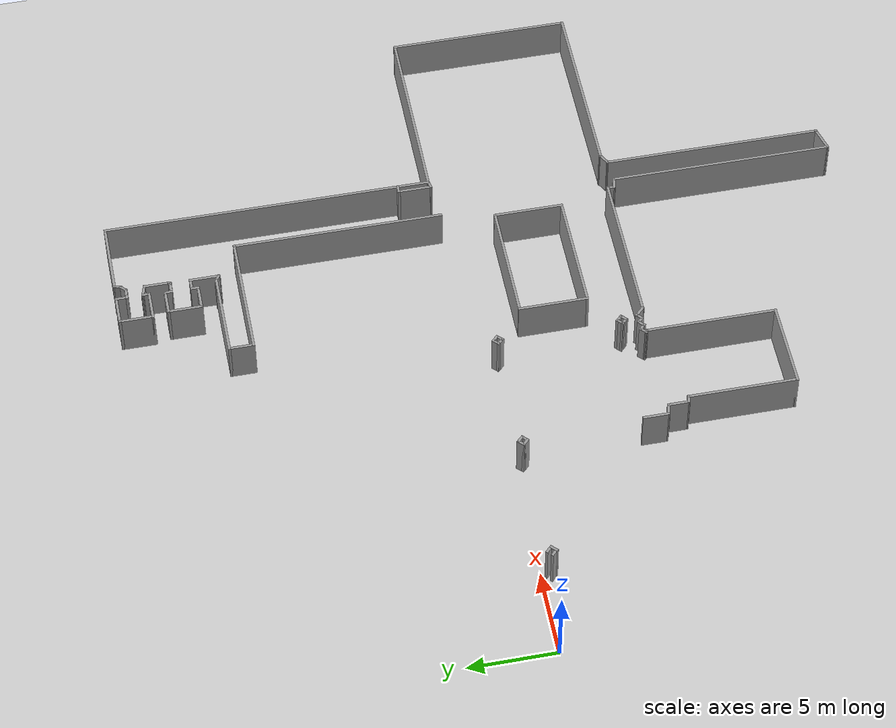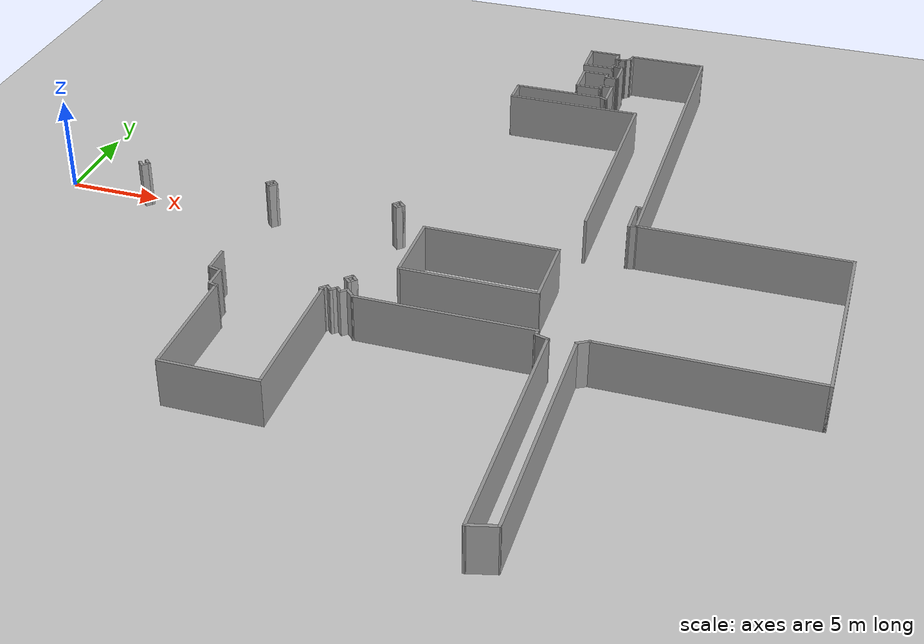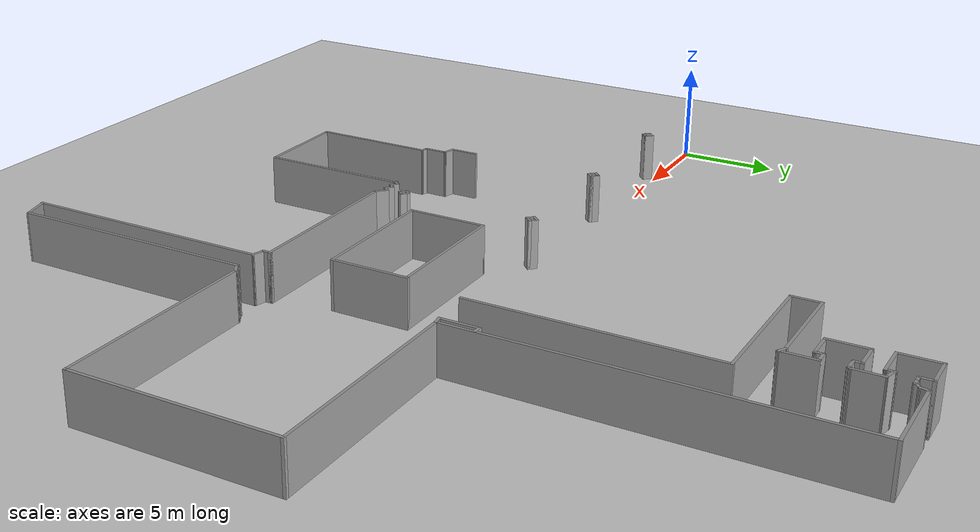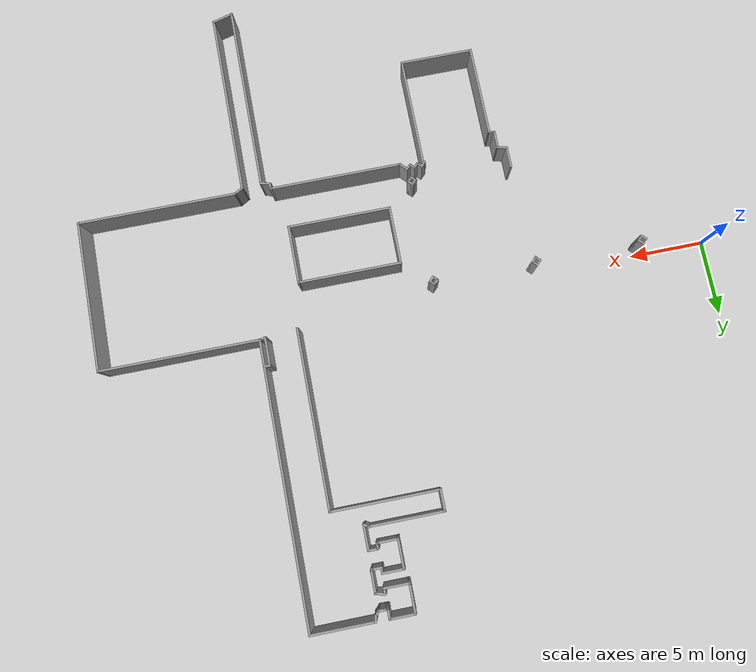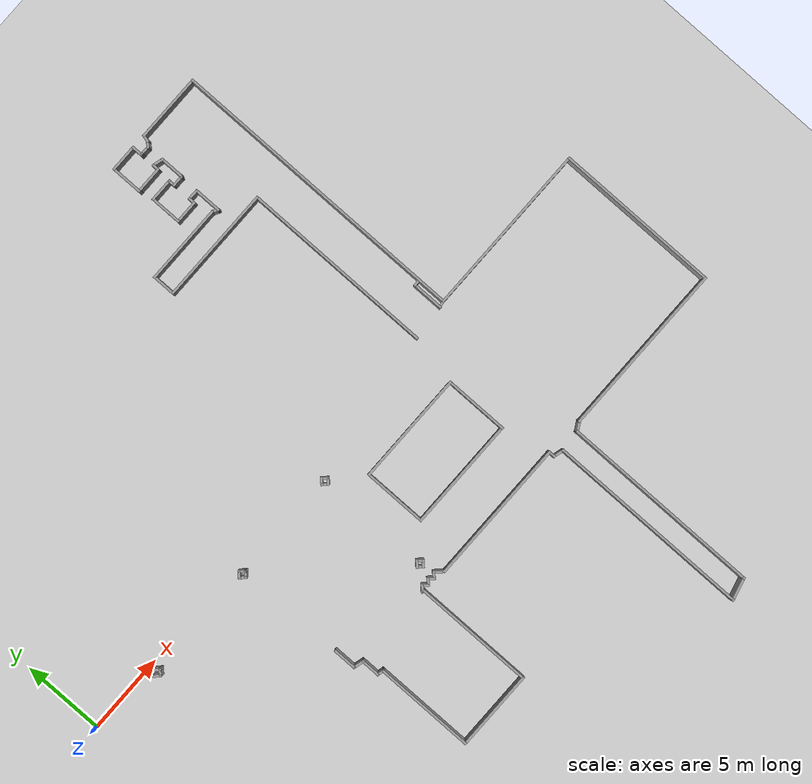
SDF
<sdf version="1.6">
 <world name="default">
  <model name="ground_plane">
   <static>1</static>
   <link name="link">
    <collision name="collision">
     <geometry><plane><normal>0 0 1</normal><size>100 100</size></plane></geometry>
     <surface><friction><ode><mu>100</mu><mu2>50</mu2></ode></friction></surface>
    </collision>
    <visual name="visual">
     <cast_shadows>0</cast_shadows>
     <geometry><plane><normal>0 0 1</normal><size>100 100</size></plane></geometry>
     <material>
      <script><uri>file://media/materials/scripts/gazebo.material</uri><name>Gazebo/Grey</name></script>
     </material>
    </visual>
   </link>
  </model>
  <model name="301_1f_2">
   <pose>0.932725 -1.08367 0 0 -0 0</pose>
   <link name="Wall_125">
    <collision name="Wall_125_Collision">
     <geometry><box><size>0.5 0.15 2.5</size></box></geometry>
     <pose>0 0 1.25 0 -0 0</pose>
    </collision>
    <visual name="Wall_125_Visual">
     <pose>0 0 1.25 0 -0 0</pose>
     <geometry><box><size>0.5 0.15 2.5</size></box></geometry>
     <material>
      <script><uri>file://media/materials/scripts/gazebo.material</uri><name>Gazebo/Grey</name></script>
      <ambient>1 1 1 1</ambient>
     </material>
     <meta><layer>0</layer></meta>
    </visual>
    <pose>29.67 4.02635 0 0 -0 3.14159</pose>
   </link>
   <link name="Wall_126">
    <collision name="Wall_126_Collision">
     <geometry><box><size>2 0.15 2.5</size></box></geometry>
     <pose>0 0 1.25 0 -0 0</pose>
    </collision>
    <visual name="Wall_126_Visual">
     <pose>0 0 1.25 0 -0 0</pose>
     <geometry><box><size>2 0.15 2.5</size></box></geometry>
     <material>
      <script><uri>file://media/materials/scripts/gazebo.material</uri><name>Gazebo/Grey</name></script>
      <ambient>1 1 1 1</ambient>
     </material>
     <meta><layer>0</layer></meta>
    </visual>
    <pose>29.495 3.10135 0 0 -0 -1.5708</pose>
   </link>
   <link name="Wall_127">
    <collision name="Wall_127_Collision">
     <geometry><box><size>0.518548 0.15 2.5</size></box></geometry>
     <pose>0 0 1.25 0 -0 0</pose>
    </collision>
    <visual name="Wall_127_Visual">
     <pose>0 0 1.25 0 -0 0</pose>
     <geometry><box><size>0.518548 0.15 2.5</size></box></geometry>
     <material>
      <script><uri>file://media/materials/scripts/gazebo.material</uri><name>Gazebo/Grey</name></script>
      <ambient>1 1 1 1</ambient>
     </material>
     <meta><layer>0</layer></meta>
    </visual>
    <pose>29.6756 2.21303 0 0 -0 0.200373</pose>
   </link>
   <link name="Wall_129">
    <collision name="Wall_129_Collision">
     <geometry><box><size>7 0.15 2.5</size></box></geometry>
     <pose>0 0 1.25 0 -0 0</pose>
    </collision>
    <visual name="Wall_129_Visual">
     <pose>0 0 1.25 0 -0 0</pose>
     <geometry><box><size>7 0.15 2.5</size></box></geometry>
     <material>
      <script><uri>file://media/materials/scripts/gazebo.material</uri><name>Gazebo/Grey</name></script>
      <ambient>1 1 1 1</ambient>
     </material>
     <meta><layer>0</layer></meta>
    </visual>
    <pose>23.2968 -1.0262 0 0 -0 0</pose>
   </link>
   <link name="Wall_130">
    <collision name="Wall_130_Collision">
     <geometry><box><size>4 0.15 2.5</size></box></geometry>
     <pose>0 0 1.25 0 -0 0</pose>
    </collision>
    <visual name="Wall_130_Visual">
     <pose>0 0 1.25 0 -0 0</pose>
     <geometry><box><size>4 0.15 2.5</size></box></geometry>
     <material>
      <script><uri>file://media/materials/scripts/gazebo.material</uri><name>Gazebo/Grey</name></script>
      <ambient>1 1 1 1</ambient>
     </material>
     <meta><layer>0</layer></meta>
    </visual>
    <pose>26.7218 -2.9512 0 0 -0 -1.5708</pose>
   </link>
   <link name="Wall_131">
    <collision name="Wall_131_Collision">
     <geometry><box><size>7 0.15 2.5</size></box></geometry>
     <pose>0 0 1.25 0 -0 0</pose>
    </collision>
    <visual name="Wall_131_Visual">
     <pose>0 0 1.25 0 -0 0</pose>
     <geometry><box><size>7 0.15 2.5</size></box></geometry>
     <material>
      <script><uri>file://media/materials/scripts/gazebo.material</uri><name>Gazebo/Grey</name></script>
      <ambient>1 1 1 1</ambient>
     </material>
     <meta><layer>0</layer></meta>
    </visual>
    <pose>23.2968 -4.8762 0 0 -0 3.14159</pose>
   </link>
   <link name="Wall_132">
    <collision name="Wall_132_Collision">
     <geometry><box><size>4 0.15 2.5</size></box></geometry>
     <pose>0 0 1.25 0 -0 0</pose>
    </collision>
    <visual name="Wall_132_Visual">
     <pose>0 0 1.25 0 -0 0</pose>
     <geometry><box><size>4 0.15 2.5</size></box></geometry>
     <material>
      <script><uri>file://media/materials/scripts/gazebo.material</uri><name>Gazebo/Grey</name></script>
      <ambient>1 1 1 1</ambient>
     </material>
     <meta><layer>0</layer></meta>
    </visual>
    <pose>19.8718 -2.9512 0 0 -0 1.5708</pose>
   </link>
   <link name="Wall_134">
    <collision name="Wall_134_Collision">
     <geometry><box><size>0.5 0.15 2.5</size></box></geometry>
     <pose>0 0 1.25 0 -0 0</pose>
    </collision>
    <visual name="Wall_134_Visual">
     <pose>0 0 1.25 0 -0 0</pose>
     <geometry><box><size>0.5 0.15 2.5</size></box></geometry>
     <material>
      <script><uri>file://media/materials/scripts/gazebo.material</uri><name>Gazebo/Grey</name></script>
      <ambient>1 1 1 1</ambient>
     </material>
     <meta><layer>0</layer></meta>
    </visual>
    <pose>17.9015 -6.31132 0 0 -0 0.785398</pose>
   </link>
   <link name="Wall_135">
    <collision name="Wall_135_Collision">
     <geometry><box><size>0.5 0.15 2.5</size></box></geometry>
     <pose>0 0 1.25 0 -0 0</pose>
    </collision>
    <visual name="Wall_135_Visual">
     <pose>0 0 1.25 0 -0 0</pose>
     <geometry><box><size>0.5 0.15 2.5</size></box></geometry>
     <material>
      <script><uri>file://media/materials/scripts/gazebo.material</uri><name>Gazebo/Grey</name></script>
      <ambient>1 1 1 1</ambient>
     </material>
     <meta><layer>0</layer></meta>
    </visual>
    <pose>18.1489 -6.31132 0 0 -0 -0.785398</pose>
   </link>
   <link name="Wall_136">
    <collision name="Wall_136_Collision">
     <geometry><box><size>0.5 0.15 2.5</size></box></geometry>
     <pose>0 0 1.25 0 -0 0</pose>
    </collision>
    <visual name="Wall_136_Visual">
     <pose>0 0 1.25 0 -0 0</pose>
     <geometry><box><size>0.5 0.15 2.5</size></box></geometry>
     <material>
      <script><uri>file://media/materials/scripts/gazebo.material</uri><name>Gazebo/Grey</name></script>
      <ambient>1 1 1 1</ambient>
     </material>
     <meta><layer>0</layer></meta>
    </visual>
    <pose>18.1489 -6.55881 0 0 -0 -2.35619</pose>
   </link>
   <link name="Wall_137">
    <collision name="Wall_137_Collision">
     <geometry><box><size>0.5 0.15 2.5</size></box></geometry>
     <pose>0 0 1.25 0 -0 0</pose>
    </collision>
    <visual name="Wall_137_Visual">
     <pose>0 0 1.25 0 -0 0</pose>
     <geometry><box><size>0.5 0.15 2.5</size></box></geometry>
     <material>
      <script><uri>file://media/materials/scripts/gazebo.material</uri><name>Gazebo/Grey</name></script>
      <ambient>1 1 1 1</ambient>
     </material>
     <meta><layer>0</layer></meta>
    </visual>
    <pose>17.9015 -6.55881 0 0 -0 2.35619</pose>
   </link>
   <link name="Wall_139">
    <collision name="Wall_139_Collision">
     <geometry><box><size>0.5 0.15 2.5</size></box></geometry>
     <pose>0 0 1.25 0 -0 0</pose>
    </collision>
    <visual name="Wall_139_Visual">
     <pose>0 0 1.25 0 -0 0</pose>
     <geometry><box><size>0.5 0.15 2.5</size></box></geometry>
     <material>
      <script><uri>file://media/materials/scripts/gazebo.material</uri><name>Gazebo/Grey</name></script>
      <ambient>1 1 1 1</ambient>
     </material>
     <meta><layer>0</layer></meta>
    </visual>
    <pose>17.8424 0.709798 0 0 -0 0.785398</pose>
   </link>
   <link name="Wall_140">
    <collision name="Wall_140_Collision">
     <geometry><box><size>0.5 0.15 2.5</size></box></geometry>
     <pose>0 0 1.25 0 -0 0</pose>
    </collision>
    <visual name="Wall_140_Visual">
     <pose>0 0 1.25 0 -0 0</pose>
     <geometry><box><size>0.5 0.15 2.5</size></box></geometry>
     <material>
      <script><uri>file://media/materials/scripts/gazebo.material</uri><name>Gazebo/Grey</name></script>
      <ambient>1 1 1 1</ambient>
     </material>
     <meta><layer>0</layer></meta>
    </visual>
    <pose>18.0899 0.709798 0 0 -0 -0.785398</pose>
   </link>
   <link name="Wall_141">
    <collision name="Wall_141_Collision">
     <geometry><box><size>0.5 0.15 2.5</size></box></geometry>
     <pose>0 0 1.25 0 -0 0</pose>
    </collision>
    <visual name="Wall_141_Visual">
     <pose>0 0 1.25 0 -0 0</pose>
     <geometry><box><size>0.5 0.15 2.5</size></box></geometry>
     <material>
      <script><uri>file://media/materials/scripts/gazebo.material</uri><name>Gazebo/Grey</name></script>
      <ambient>1 1 1 1</ambient>
     </material>
     <meta><layer>0</layer></meta>
    </visual>
    <pose>18.0899 0.462311 0 0 -0 -2.35619</pose>
   </link>
   <link name="Wall_142">
    <collision name="Wall_142_Collision">
     <geometry><box><size>0.5 0.15 2.5</size></box></geometry>
     <pose>0 0 1.25 0 -0 0</pose>
    </collision>
    <visual name="Wall_142_Visual">
     <pose>0 0 1.25 0 -0 0</pose>
     <geometry><box><size>0.5 0.15 2.5</size></box></geometry>
     <material>
      <script><uri>file://media/materials/scripts/gazebo.material</uri><name>Gazebo/Grey</name></script>
      <ambient>1 1 1 1</ambient>
     </material>
     <meta><layer>0</layer></meta>
    </visual>
    <pose>17.8424 0.462311 0 0 -0 2.35619</pose>
   </link>
   <link name="Wall_144">
    <collision name="Wall_144_Collision">
     <geometry><box><size>0.5 0.15 2.5</size></box></geometry>
     <pose>0 0 1.25 0 -0 0</pose>
    </collision>
    <visual name="Wall_144_Visual">
     <pose>0 0 1.25 0 -0 0</pose>
     <geometry><box><size>0.5 0.15 2.5</size></box></geometry>
     <material>
      <script><uri>file://media/materials/scripts/gazebo.material</uri><name>Gazebo/Grey</name></script>
      <ambient>1 1 1 1</ambient>
     </material>
     <meta><layer>0</layer></meta>
    </visual>
    <pose>10.9112 0.724545 0 0 -0 0.785398</pose>
   </link>
   <link name="Wall_145">
    <collision name="Wall_145_Collision">
     <geometry><box><size>0.5 0.15 2.5</size></box></geometry>
     <pose>0 0 1.25 0 -0 0</pose>
    </collision>
    <visual name="Wall_145_Visual">
     <pose>0 0 1.25 0 -0 0</pose>
     <geometry><box><size>0.5 0.15 2.5</size></box></geometry>
     <material>
      <script><uri>file://media/materials/scripts/gazebo.material</uri><name>Gazebo/Grey</name></script>
      <ambient>1 1 1 1</ambient>
     </material>
     <meta><layer>0</layer></meta>
    </visual>
    <pose>11.1587 0.724545 0 0 -0 -0.785398</pose>
   </link>
   <link name="Wall_146">
    <collision name="Wall_146_Collision">
     <geometry><box><size>0.5 0.15 2.5</size></box></geometry>
     <pose>0 0 1.25 0 -0 0</pose>
    </collision>
    <visual name="Wall_146_Visual">
     <pose>0 0 1.25 0 -0 0</pose>
     <geometry><box><size>0.5 0.15 2.5</size></box></geometry>
     <material>
      <script><uri>file://media/materials/scripts/gazebo.material</uri><name>Gazebo/Grey</name></script>
      <ambient>1 1 1 1</ambient>
     </material>
     <meta><layer>0</layer></meta>
    </visual>
    <pose>11.1587 0.477058 0 0 -0 -2.35619</pose>
   </link>
   <link name="Wall_147">
    <collision name="Wall_147_Collision">
     <geometry><box><size>0.5 0.15 2.5</size></box></geometry>
     <pose>0 0 1.25 0 -0 0</pose>
    </collision>
    <visual name="Wall_147_Visual">
     <pose>0 0 1.25 0 -0 0</pose>
     <geometry><box><size>0.5 0.15 2.5</size></box></geometry>
     <material>
      <script><uri>file://media/materials/scripts/gazebo.material</uri><name>Gazebo/Grey</name></script>
      <ambient>1 1 1 1</ambient>
     </material>
     <meta><layer>0</layer></meta>
    </visual>
    <pose>10.9112 0.477058 0 0 -0 2.35619</pose>
   </link>
   <link name="Wall_150">
    <collision name="Wall_150_Collision">
     <geometry><box><size>0.5 0.15 2.5</size></box></geometry>
     <pose>0 0 1.25 0 -0 0</pose>
    </collision>
    <visual name="Wall_150_Visual">
     <pose>0 0 1.25 0 -0 0</pose>
     <geometry><box><size>0.5 0.15 2.5</size></box></geometry>
     <material>
      <script><uri>file://media/materials/scripts/gazebo.material</uri><name>Gazebo/Grey</name></script>
      <ambient>1 1 1 1</ambient>
     </material>
     <meta><layer>0</layer></meta>
    </visual>
    <pose>3.91743 0.666783 0 0 -0 -0.785398</pose>
   </link>
   <link name="Wall_153">
    <collision name="Wall_153_Collision">
     <geometry><box><size>0.5 0.15 2.5</size></box></geometry>
     <pose>0 0 1.25 0 -0 0</pose>
    </collision>
    <visual name="Wall_153_Visual">
     <pose>0 0 1.25 0 -0 0</pose>
     <geometry><box><size>0.5 0.15 2.5</size></box></geometry>
     <material>
      <script><uri>file://media/materials/scripts/gazebo.material</uri><name>Gazebo/Grey</name></script>
      <ambient>1 1 1 1</ambient>
     </material>
     <meta><layer>0</layer></meta>
    </visual>
    <pose>3.91743 0.419295 0 0 -0 -2.35619</pose>
   </link>
   <link name="Wall_154">
    <collision name="Wall_154_Collision">
     <geometry><box><size>0.5 0.15 2.5</size></box></geometry>
     <pose>0 0 1.25 0 -0 0</pose>
    </collision>
    <visual name="Wall_154_Visual">
     <pose>0 0 1.25 0 -0 0</pose>
     <geometry><box><size>0.5 0.15 2.5</size></box></geometry>
     <material>
      <script><uri>file://media/materials/scripts/gazebo.material</uri><name>Gazebo/Grey</name></script>
      <ambient>1 1 1 1</ambient>
     </material>
     <meta><layer>0</layer></meta>
    </visual>
    <pose>3.66994 0.419295 0 0 -0 2.35619</pose>
   </link>
   <link name="Wall_31">
    <collision name="Wall_31_Collision">
     <geometry><box><size>1.5 0.15 2.5</size></box></geometry>
     <pose>0 0 1.25 0 -0 0</pose>
    </collision>
    <visual name="Wall_31_Visual">
     <pose>0 0 1.25 0 -0 0</pose>
     <geometry><box><size>1.5 0.15 2.5</size></box></geometry>
     <material>
      <script><uri>file://media/materials/scripts/gazebo.material</uri><name>Gazebo/Grey</name></script>
      <ambient>1 1 1 1</ambient>
     </material>
     <meta><layer>0</layer></meta>
    </visual>
    <pose>11.2703 -6.82264 0 0 -0 -1.5708</pose>
   </link>
   <link name="Wall_32">
    <collision name="Wall_32_Collision">
     <geometry><box><size>0.75 0.15 2.5</size></box></geometry>
     <pose>0 0 1.25 0 -0 0</pose>
    </collision>
    <visual name="Wall_32_Visual">
     <pose>0 0 1.25 0 -0 0</pose>
     <geometry><box><size>0.75 0.15 2.5</size></box></geometry>
     <material>
      <script><uri>file://media/materials/scripts/gazebo.material</uri><name>Gazebo/Grey</name></script>
      <ambient>1 1 1 1</ambient>
     </material>
     <meta><layer>0</layer></meta>
    </visual>
    <pose>11.5601 -7.57528 0 0 -0 -0.261799</pose>
   </link>
   <link name="Wall_33">
    <collision name="Wall_33_Collision">
     <geometry><box><size>1.25 0.15 2.5</size></box></geometry>
     <pose>0 0 1.25 0 -0 0</pose>
    </collision>
    <visual name="Wall_33_Visual">
     <pose>0 0 1.25 0 -0 0</pose>
     <geometry><box><size>1.25 0.15 2.5</size></box></geometry>
     <material>
      <script><uri>file://media/materials/scripts/gazebo.material</uri><name>Gazebo/Grey</name></script>
      <ambient>1 1 1 1</ambient>
     </material>
     <meta><layer>0</layer></meta>
    </visual>
    <pose>11.8498 -8.20293 0 0 -0 -1.5708</pose>
   </link>
   <link name="Wall_34">
    <collision name="Wall_34_Collision">
     <geometry><box><size>0.5 0.15 2.5</size></box></geometry>
     <pose>0 0 1.25 0 -0 0</pose>
    </collision>
    <visual name="Wall_34_Visual">
     <pose>0 0 1.25 0 -0 0</pose>
     <geometry><box><size>0.5 0.15 2.5</size></box></geometry>
     <material>
      <script><uri>file://media/materials/scripts/gazebo.material</uri><name>Gazebo/Grey</name></script>
      <ambient>1 1 1 1</ambient>
     </material>
     <meta><layer>0</layer></meta>
    </visual>
    <pose>12.0189 -8.79822 0 0 -0 -0.261799</pose>
   </link>
   <link name="Wall_35">
    <collision name="Wall_35_Collision">
     <geometry><box><size>6.25 0.15 2.5</size></box></geometry>
     <pose>0 0 1.25 0 -0 0</pose>
    </collision>
    <visual name="Wall_35_Visual">
     <pose>0 0 1.25 0 -0 0</pose>
     <geometry><box><size>6.25 0.15 2.5</size></box></geometry>
     <material>
      <script><uri>file://media/materials/scripts/gazebo.material</uri><name>Gazebo/Grey</name></script>
      <ambient>1 1 1 1</ambient>
     </material>
     <meta><layer>0</layer></meta>
    </visual>
    <pose>12.1879 -11.8935 0 0 -0 -1.5708</pose>
   </link>
   <link name="Wall_36">
    <collision name="Wall_36_Collision">
     <geometry><box><size>5 0.15 2.5</size></box></geometry>
     <pose>0 0 1.25 0 -0 0</pose>
    </collision>
    <visual name="Wall_36_Visual">
     <pose>0 0 1.25 0 -0 0</pose>
     <geometry><box><size>5 0.15 2.5</size></box></geometry>
     <material>
      <script><uri>file://media/materials/scripts/gazebo.material</uri><name>Gazebo/Grey</name></script>
      <ambient>1 1 1 1</ambient>
     </material>
     <meta><layer>0</layer></meta>
    </visual>
    <pose>14.6129 -14.9435 0 0 -0 0</pose>
   </link>
   <link name="Wall_37">
    <collision name="Wall_37_Collision">
     <geometry><box><size>7.5 0.15 2.5</size></box></geometry>
     <pose>0 0 1.25 0 -0 0</pose>
    </collision>
    <visual name="Wall_37_Visual">
     <pose>0 0 1.25 0 -0 0</pose>
     <geometry><box><size>7.5 0.15 2.5</size></box></geometry>
     <material>
      <script><uri>file://media/materials/scripts/gazebo.material</uri><name>Gazebo/Grey</name></script>
      <ambient>1 1 1 1</ambient>
     </material>
     <meta><layer>0</layer></meta>
    </visual>
    <pose>17.0379 -11.2685 0 0 -0 1.5708</pose>
   </link>
   <link name="Wall_39">
    <collision name="Wall_39_Collision">
     <geometry><box><size>0.25 0.15 2.5</size></box></geometry>
     <pose>0 0 1.25 0 -0 0</pose>
    </collision>
    <visual name="Wall_39_Visual">
     <pose>0 0 1.25 0 -0 0</pose>
     <geometry><box><size>0.25 0.15 2.5</size></box></geometry>
     <material>
      <script><uri>file://media/materials/scripts/gazebo.material</uri><name>Gazebo/Grey</name></script>
      <ambient>1 1 1 1</ambient>
     </material>
     <meta><layer>0</layer></meta>
    </visual>
    <pose>16.9896 -7.58057 0 0 -0 2.87979</pose>
   </link>
   <link name="Wall_40">
    <collision name="Wall_40_Collision">
     <geometry><box><size>0.5 0.15 2.5</size></box></geometry>
     <pose>0 0 1.25 0 -0 0</pose>
    </collision>
    <visual name="Wall_40_Visual">
     <pose>0 0 1.25 0 -0 0</pose>
     <geometry><box><size>0.5 0.15 2.5</size></box></geometry>
     <material>
      <script><uri>file://media/materials/scripts/gazebo.material</uri><name>Gazebo/Grey</name></script>
      <ambient>1 1 1 1</ambient>
     </material>
     <meta><layer>0</layer></meta>
    </visual>
    <pose>17.0651 -7.44389 0 0 -0 0.785398</pose>
   </link>
   <link name="Wall_41">
    <collision name="Wall_41_Collision">
     <geometry><box><size>0.5 0.15 2.5</size></box></geometry>
     <pose>0 0 1.25 0 -0 0</pose>
    </collision>
    <visual name="Wall_41_Visual">
     <pose>0 0 1.25 0 -0 0</pose>
     <geometry><box><size>0.5 0.15 2.5</size></box></geometry>
     <material>
      <script><uri>file://media/materials/scripts/gazebo.material</uri><name>Gazebo/Grey</name></script>
      <ambient>1 1 1 1</ambient>
     </material>
     <meta><layer>0</layer></meta>
    </visual>
    <pose>17.3126 -7.44389 0 0 -0 -0.785398</pose>
   </link>
   <link name="Wall_42">
    <collision name="Wall_42_Collision">
     <geometry><box><size>0.5 0.15 2.5</size></box></geometry>
     <pose>0 0 1.25 0 -0 0</pose>
    </collision>
    <visual name="Wall_42_Visual">
     <pose>0 0 1.25 0 -0 0</pose>
     <geometry><box><size>0.5 0.15 2.5</size></box></geometry>
     <material>
      <script><uri>file://media/materials/scripts/gazebo.material</uri><name>Gazebo/Grey</name></script>
      <ambient>1 1 1 1</ambient>
     </material>
     <meta><layer>0</layer></meta>
    </visual>
    <pose>17.56 -7.44389 0 0 -0 0.785398</pose>
   </link>
   <link name="Wall_43">
    <collision name="Wall_43_Collision">
     <geometry><box><size>0.5 0.15 2.5</size></box></geometry>
     <pose>0 0 1.25 0 -0 0</pose>
    </collision>
    <visual name="Wall_43_Visual">
     <pose>0 0 1.25 0 -0 0</pose>
     <geometry><box><size>0.5 0.15 2.5</size></box></geometry>
     <material>
      <script><uri>file://media/materials/scripts/gazebo.material</uri><name>Gazebo/Grey</name></script>
      <ambient>1 1 1 1</ambient>
     </material>
     <meta><layer>0</layer></meta>
    </visual>
    <pose>17.8075 -7.44389 0 0 -0 -0.785398</pose>
   </link>
   <link name="Wall_44">
    <collision name="Wall_44_Collision">
     <geometry><box><size>0.5 0.15 2.5</size></box></geometry>
     <pose>0 0 1.25 0 -0 0</pose>
    </collision>
    <visual name="Wall_44_Visual">
     <pose>0 0 1.25 0 -0 0</pose>
     <geometry><box><size>0.5 0.15 2.5</size></box></geometry>
     <material>
      <script><uri>file://media/materials/scripts/gazebo.material</uri><name>Gazebo/Grey</name></script>
      <ambient>1 1 1 1</ambient>
     </material>
     <meta><layer>0</layer></meta>
    </visual>
    <pose>18.055 -7.44389 0 0 -0 0.785398</pose>
   </link>
   <link name="Wall_45">
    <collision name="Wall_45_Collision">
     <geometry><box><size>0.75 0.15 2.5</size></box></geometry>
     <pose>0 0 1.25 0 -0 0</pose>
    </collision>
    <visual name="Wall_45_Visual">
     <pose>0 0 1.25 0 -0 0</pose>
     <geometry><box><size>0.75 0.15 2.5</size></box></geometry>
     <material>
      <script><uri>file://media/materials/scripts/gazebo.material</uri><name>Gazebo/Grey</name></script>
      <ambient>1 1 1 1</ambient>
     </material>
     <meta><layer>0</layer></meta>
    </visual>
    <pose>18.3909 -7.53228 0 0 -0 -0.785398</pose>
   </link>
   <link name="Wall_46">
    <collision name="Wall_46_Collision">
     <geometry><box><size>9 0.15 2.5</size></box></geometry>
     <pose>0 0 1.25 0 -0 0</pose>
    </collision>
    <visual name="Wall_46_Visual">
     <pose>0 0 1.25 0 -0 0</pose>
     <geometry><box><size>9 0.15 2.5</size></box></geometry>
     <material>
      <script><uri>file://media/materials/scripts/gazebo.material</uri><name>Gazebo/Grey</name></script>
      <ambient>1 1 1 1</ambient>
     </material>
     <meta><layer>0</layer></meta>
    </visual>
    <pose>23.028 -7.74441 0 0 -0 0</pose>
   </link>
   <link name="Wall_47">
    <collision name="Wall_47_Collision">
     <geometry><box><size>0.5 0.15 2.5</size></box></geometry>
     <pose>0 0 1.25 0 -0 0</pose>
    </collision>
    <visual name="Wall_47_Visual">
     <pose>0 0 1.25 0 -0 0</pose>
     <geometry><box><size>0.5 0.15 2.5</size></box></geometry>
     <material>
      <script><uri>file://media/materials/scripts/gazebo.material</uri><name>Gazebo/Grey</name></script>
      <ambient>1 1 1 1</ambient>
     </material>
     <meta><layer>0</layer></meta>
    </visual>
    <pose>27.453 -7.91941 0 0 -0 -1.5708</pose>
   </link>
   <link name="Wall_48">
    <collision name="Wall_48_Collision">
     <geometry><box><size>0.75 0.15 2.5</size></box></geometry>
     <pose>0 0 1.25 0 -0 0</pose>
    </collision>
    <visual name="Wall_48_Visual">
     <pose>0 0 1.25 0 -0 0</pose>
     <geometry><box><size>0.75 0.15 2.5</size></box></geometry>
     <material>
      <script><uri>file://media/materials/scripts/gazebo.material</uri><name>Gazebo/Grey</name></script>
      <ambient>1 1 1 1</ambient>
     </material>
     <meta><layer>0</layer></meta>
    </visual>
    <pose>27.7428 -8.17206 0 0 -0 -0.261799</pose>
   </link>
   <link name="Wall_51">
    <collision name="Wall_51_Collision">
     <geometry><box><size>12.75 0.15 2.5</size></box></geometry>
     <pose>0 0 1.25 0 -0 0</pose>
    </collision>
    <visual name="Wall_51_Visual">
     <pose>0 0 1.25 0 -0 0</pose>
     <geometry><box><size>12.75 0.15 2.5</size></box></geometry>
     <material>
      <script><uri>file://media/materials/scripts/gazebo.material</uri><name>Gazebo/Grey</name></script>
      <ambient>1 1 1 1</ambient>
     </material>
     <meta><layer>0</layer></meta>
    </visual>
    <pose>28.0326 -14.5497 0 0 -0 -1.5708</pose>
   </link>
   <link name="Wall_52">
    <collision name="Wall_52_Collision">
     <geometry><box><size>1.5 0.15 2.5</size></box></geometry>
     <pose>0 0 1.25 0 -0 0</pose>
    </collision>
    <visual name="Wall_52_Visual">
     <pose>0 0 1.25 0 -0 0</pose>
     <geometry><box><size>1.5 0.15 2.5</size></box></geometry>
     <material>
      <script><uri>file://media/materials/scripts/gazebo.material</uri><name>Gazebo/Grey</name></script>
      <ambient>1 1 1 1</ambient>
     </material>
     <meta><layer>0</layer></meta>
    </visual>
    <pose>28.6846 -20.675 0 0 -0 0.261799</pose>
   </link>
   <link name="Wall_53">
    <collision name="Wall_53_Collision">
     <geometry><box><size>12.5 0.15 2.5</size></box></geometry>
     <pose>0 0 1.25 0 -0 0</pose>
    </collision>
    <visual name="Wall_53_Visual">
     <pose>0 0 1.25 0 -0 0</pose>
     <geometry><box><size>12.5 0.15 2.5</size></box></geometry>
     <material>
      <script><uri>file://media/materials/scripts/gazebo.material</uri><name>Gazebo/Grey</name></script>
      <ambient>1 1 1 1</ambient>
     </material>
     <meta><layer>0</layer></meta>
    </visual>
    <pose>29.3366 -14.3253 0 0 -0 1.5708</pose>
   </link>
   <link name="Wall_54">
    <collision name="Wall_54_Collision">
     <geometry><box><size>0.75 0.15 2.5</size></box></geometry>
     <pose>0 0 1.25 0 -0 0</pose>
    </collision>
    <visual name="Wall_54_Visual">
     <pose>0 0 1.25 0 -0 0</pose>
     <geometry><box><size>0.75 0.15 2.5</size></box></geometry>
     <material>
      <script><uri>file://media/materials/scripts/gazebo.material</uri><name>Gazebo/Grey</name></script>
      <ambient>1 1 1 1</ambient>
     </material>
     <meta><layer>0</layer></meta>
    </visual>
    <pose>29.5964 -8.0003 0 0 -0 0.523599</pose>
   </link>
   <link name="Wall_55">
    <collision name="Wall_55_Collision">
     <geometry><box><size>10.75 0.15 2.5</size></box></geometry>
     <pose>0 0 1.25 0 -0 0</pose>
    </collision>
    <visual name="Wall_55_Visual">
     <pose>0 0 1.25 0 -0 0</pose>
     <geometry><box><size>10.75 0.15 2.5</size></box></geometry>
     <material>
      <script><uri>file://media/materials/scripts/gazebo.material</uri><name>Gazebo/Grey</name></script>
      <ambient>1 1 1 1</ambient>
     </material>
     <meta><layer>0</layer></meta>
    </visual>
    <pose>35.1562 -7.8503 0 0 -0 0</pose>
   </link>
   <link name="Wall_57">
    <collision name="Wall_57_Collision">
     <geometry><box><size>10.25 0.15 2.5</size></box></geometry>
     <pose>0 0 1.25 0 -0 0</pose>
    </collision>
    <visual name="Wall_57_Visual">
     <pose>0 0 1.25 0 -0 0</pose>
     <geometry><box><size>10.25 0.15 2.5</size></box></geometry>
     <material>
      <script><uri>file://media/materials/scripts/gazebo.material</uri><name>Gazebo/Grey</name></script>
      <ambient>1 1 1 1</ambient>
     </material>
     <meta><layer>0</layer></meta>
    </visual>
    <pose>40.4562 -2.8003 0 0 -0 1.5708</pose>
   </link>
   <link name="Wall_58">
    <collision name="Wall_58_Collision">
     <geometry><box><size>10.75 0.15 2.5</size></box></geometry>
     <pose>0 0 1.25 0 -0 0</pose>
    </collision>
    <visual name="Wall_58_Visual">
     <pose>0 0 1.25 0 -0 0</pose>
     <geometry><box><size>10.75 0.15 2.5</size></box></geometry>
     <material>
      <script><uri>file://media/materials/scripts/gazebo.material</uri><name>Gazebo/Grey</name></script>
      <ambient>1 1 1 1</ambient>
     </material>
     <meta><layer>0</layer></meta>
    </visual>
    <pose>35.1562 2.2497 0 0 -0 3.14159</pose>
   </link>
   <link name="Wall_59">
    <collision name="Wall_59_Collision">
     <geometry><box><size>18.75 0.15 2.5</size></box></geometry>
     <pose>0 0 1.25 0 -0 0</pose>
    </collision>
    <visual name="Wall_59_Visual">
     <pose>0 0 1.25 0 -0 0</pose>
     <geometry><box><size>18.75 0.15 2.5</size></box></geometry>
     <material>
      <script><uri>file://media/materials/scripts/gazebo.material</uri><name>Gazebo/Grey</name></script>
      <ambient>1 1 1 1</ambient>
     </material>
     <meta><layer>0</layer></meta>
    </visual>
    <pose>29.8562 11.5497 0 0 -0 1.5708</pose>
   </link>
   <link name="Wall_61">
    <collision name="Wall_61_Collision">
     <geometry><box><size>4.25 0.15 2.5</size></box></geometry>
     <pose>0 0 1.25 0 -0 0</pose>
    </collision>
    <visual name="Wall_61_Visual">
     <pose>0 0 1.25 0 -0 0</pose>
     <geometry><box><size>4.25 0.15 2.5</size></box></geometry>
     <material>
      <script><uri>file://media/materials/scripts/gazebo.material</uri><name>Gazebo/Grey</name></script>
      <ambient>1 1 1 1</ambient>
     </material>
     <meta><layer>0</layer></meta>
    </visual>
    <pose>27.8062 20.8497 0 0 -0 3.14159</pose>
   </link>
   <link name="Wall_62">
    <collision name="Wall_62_Collision">
     <geometry><box><size>0.5 0.15 2.5</size></box></geometry>
     <pose>0 0 1.25 0 -0 0</pose>
    </collision>
    <visual name="Wall_62_Visual">
     <pose>0 0 1.25 0 -0 0</pose>
     <geometry><box><size>0.5 0.15 2.5</size></box></geometry>
     <material>
      <script><uri>file://media/materials/scripts/gazebo.material</uri><name>Gazebo/Grey</name></script>
      <ambient>1 1 1 1</ambient>
     </material>
     <meta><layer>0</layer></meta>
    </visual>
    <pose>25.7109 20.6807 0 0 -0 -1.8326</pose>
   </link>
   <link name="Wall_63">
    <collision name="Wall_63_Collision">
     <geometry><box><size>0.5 0.15 2.5</size></box></geometry>
     <pose>0 0 1.25 0 -0 0</pose>
    </collision>
    <visual name="Wall_63_Visual">
     <pose>0 0 1.25 0 -0 0</pose>
     <geometry><box><size>0.5 0.15 2.5</size></box></geometry>
     <material>
      <script><uri>file://media/materials/scripts/gazebo.material</uri><name>Gazebo/Grey</name></script>
      <ambient>1 1 1 1</ambient>
     </material>
     <meta><layer>0</layer></meta>
    </visual>
    <pose>25.5419 20.3879 0 0 -0 -2.35619</pose>
   </link>
   <link name="Wall_64">
    <collision name="Wall_64_Collision">
     <geometry><box><size>0.5 0.15 2.5</size></box></geometry>
     <pose>0 0 1.25 0 -0 0</pose>
    </collision>
    <visual name="Wall_64_Visual">
     <pose>0 0 1.25 0 -0 0</pose>
     <geometry><box><size>0.5 0.15 2.5</size></box></geometry>
     <material>
      <script><uri>file://media/materials/scripts/gazebo.material</uri><name>Gazebo/Grey</name></script>
      <ambient>1 1 1 1</ambient>
     </material>
     <meta><layer>0</layer></meta>
    </visual>
    <pose>25.2431 20.2641 0 0 -0 3.14159</pose>
   </link>
   <link name="Wall_67">
    <collision name="Wall_67_Collision">
     <geometry><box><size>0.25 0.15 2.5</size></box></geometry>
     <pose>0 0 1.25 0 -0 0</pose>
    </collision>
    <visual name="Wall_67_Visual">
     <pose>0 0 1.25 0 -0 0</pose>
     <geometry><box><size>0.25 0.15 2.5</size></box></geometry>
     <material>
      <script><uri>file://media/materials/scripts/gazebo.material</uri><name>Gazebo/Grey</name></script>
      <ambient>1 1 1 1</ambient>
     </material>
     <meta><layer>0</layer></meta>
    </visual>
    <pose>25.0181 20.2641 0 0 -0 3.14159</pose>
   </link>
   <link name="Wall_68">
    <collision name="Wall_68_Collision">
     <geometry><box><size>0.25 0.15 2.5</size></box></geometry>
     <pose>0 0 1.25 0 -0 0</pose>
    </collision>
    <visual name="Wall_68_Visual">
     <pose>0 0 1.25 0 -0 0</pose>
     <geometry><box><size>0.25 0.15 2.5</size></box></geometry>
     <material>
      <script><uri>file://media/materials/scripts/gazebo.material</uri><name>Gazebo/Grey</name></script>
      <ambient>1 1 1 1</ambient>
     </material>
     <meta><layer>0</layer></meta>
    </visual>
    <pose>24.9181 20.2641 0 0 -0 3.14159</pose>
   </link>
   <link name="Wall_69">
    <collision name="Wall_69_Collision">
     <geometry><box><size>0.75 0.15 2.5</size></box></geometry>
     <pose>0 0 1.25 0 -0 0</pose>
    </collision>
    <visual name="Wall_69_Visual">
     <pose>0 0 1.25 0 -0 0</pose>
     <geometry><box><size>0.75 0.15 2.5</size></box></geometry>
     <material>
      <script><uri>file://media/materials/scripts/gazebo.material</uri><name>Gazebo/Grey</name></script>
      <ambient>1 1 1 1</ambient>
     </material>
     <meta><layer>0</layer></meta>
    </visual>
    <pose>24.8681 20.5641 0 0 -0 1.5708</pose>
   </link>
   <link name="Wall_70">
    <collision name="Wall_70_Collision">
     <geometry><box><size>1.75 0.15 2.5</size></box></geometry>
     <pose>0 0 1.25 0 -0 0</pose>
    </collision>
    <visual name="Wall_70_Visual">
     <pose>0 0 1.25 0 -0 0</pose>
     <geometry><box><size>1.75 0.15 2.5</size></box></geometry>
     <material>
      <script><uri>file://media/materials/scripts/gazebo.material</uri><name>Gazebo/Grey</name></script>
      <ambient>1 1 1 1</ambient>
     </material>
     <meta><layer>0</layer></meta>
    </visual>
    <pose>24.0681 20.8641 0 0 -0 3.14159</pose>
   </link>
   <link name="Wall_71">
    <collision name="Wall_71_Collision">
     <geometry><box><size>2 0.15 2.5</size></box></geometry>
     <pose>0 0 1.25 0 -0 0</pose>
    </collision>
    <visual name="Wall_71_Visual">
     <pose>0 0 1.25 0 -0 0</pose>
     <geometry><box><size>2 0.15 2.5</size></box></geometry>
     <material>
      <script><uri>file://media/materials/scripts/gazebo.material</uri><name>Gazebo/Grey</name></script>
      <ambient>1 1 1 1</ambient>
     </material>
     <meta><layer>0</layer></meta>
    </visual>
    <pose>23.2681 19.9391 0 0 -0 -1.5708</pose>
   </link>
   <link name="Wall_72">
    <collision name="Wall_72_Collision">
     <geometry><box><size>1.75 0.15 2.5</size></box></geometry>
     <pose>0 0 1.25 0 -0 0</pose>
    </collision>
    <visual name="Wall_72_Visual">
     <pose>0 0 1.25 0 -0 0</pose>
     <geometry><box><size>1.75 0.15 2.5</size></box></geometry>
     <material>
      <script><uri>file://media/materials/scripts/gazebo.material</uri><name>Gazebo/Grey</name></script>
      <ambient>1 1 1 1</ambient>
     </material>
     <meta><layer>0</layer></meta>
    </visual>
    <pose>24.0681 19.0141 0 0 -0 0</pose>
   </link>
   <link name="Wall_73">
    <collision name="Wall_73_Collision">
     <geometry><box><size>0.5 0.15 2.5</size></box></geometry>
     <pose>0 0 1.25 0 -0 0</pose>
    </collision>
    <visual name="Wall_73_Visual">
     <pose>0 0 1.25 0 -0 0</pose>
     <geometry><box><size>0.5 0.15 2.5</size></box></geometry>
     <material>
      <script><uri>file://media/materials/scripts/gazebo.material</uri><name>Gazebo/Grey</name></script>
      <ambient>1 1 1 1</ambient>
     </material>
     <meta><layer>0</layer></meta>
    </visual>
    <pose>24.8681 19.1891 0 0 -0 1.5708</pose>
   </link>
   <link name="Wall_74">
    <collision name="Wall_74_Collision">
     <geometry><box><size>0.75 0.15 2.5</size></box></geometry>
     <pose>0 0 1.25 0 -0 0</pose>
    </collision>
    <visual name="Wall_74_Visual">
     <pose>0 0 1.25 0 -0 0</pose>
     <geometry><box><size>0.75 0.15 2.5</size></box></geometry>
     <material>
      <script><uri>file://media/materials/scripts/gazebo.material</uri><name>Gazebo/Grey</name></script>
      <ambient>1 1 1 1</ambient>
     </material>
     <meta><layer>0</layer></meta>
    </visual>
    <pose>25.1579 19.2865 0 0 -0 -0.261799</pose>
   </link>
   <link name="Wall_75">
    <collision name="Wall_75_Collision">
     <geometry><box><size>1.5 0.15 2.5</size></box></geometry>
     <pose>0 0 1.25 0 -0 0</pose>
    </collision>
    <visual name="Wall_75_Visual">
     <pose>0 0 1.25 0 -0 0</pose>
     <geometry><box><size>1.5 0.15 2.5</size></box></geometry>
     <material>
      <script><uri>file://media/materials/scripts/gazebo.material</uri><name>Gazebo/Grey</name></script>
      <ambient>1 1 1 1</ambient>
     </material>
     <meta><layer>0</layer></meta>
    </visual>
    <pose>25.4477 18.5339 0 0 -0 -1.5708</pose>
   </link>
   <link name="Wall_76">
    <collision name="Wall_76_Collision">
     <geometry><box><size>0.25 0.15 2.5</size></box></geometry>
     <pose>0 0 1.25 0 -0 0</pose>
    </collision>
    <visual name="Wall_76_Visual">
     <pose>0 0 1.25 0 -0 0</pose>
     <geometry><box><size>0.25 0.15 2.5</size></box></geometry>
     <material>
      <script><uri>file://media/materials/scripts/gazebo.material</uri><name>Gazebo/Grey</name></script>
      <ambient>1 1 1 1</ambient>
     </material>
     <meta><layer>0</layer></meta>
    </visual>
    <pose>25.4227 17.8156 0 0 -0 -2.0944</pose>
   </link>
   <link name="Wall_77">
    <collision name="Wall_77_Collision">
     <geometry><box><size>0.75 0.15 2.5</size></box></geometry>
     <pose>0 0 1.25 0 -0 0</pose>
    </collision>
    <visual name="Wall_77_Visual">
     <pose>0 0 1.25 0 -0 0</pose>
     <geometry><box><size>0.75 0.15 2.5</size></box></geometry>
     <material>
      <script><uri>file://media/materials/scripts/gazebo.material</uri><name>Gazebo/Grey</name></script>
      <ambient>1 1 1 1</ambient>
     </material>
     <meta><layer>0</layer></meta>
    </visual>
    <pose>25.0977 17.7722 0 0 -0 3.14159</pose>
   </link>
   <link name="Wall_78">
    <collision name="Wall_78_Collision">
     <geometry><box><size>0.5 0.15 2.5</size></box></geometry>
     <pose>0 0 1.25 0 -0 0</pose>
    </collision>
    <visual name="Wall_78_Visual">
     <pose>0 0 1.25 0 -0 0</pose>
     <geometry><box><size>0.5 0.15 2.5</size></box></geometry>
     <material>
      <script><uri>file://media/materials/scripts/gazebo.material</uri><name>Gazebo/Grey</name></script>
      <ambient>1 1 1 1</ambient>
     </material>
     <meta><layer>0</layer></meta>
    </visual>
    <pose>24.7977 17.9472 0 0 -0 1.5708</pose>
   </link>
   <link name="Wall_79">
    <collision name="Wall_79_Collision">
     <geometry><box><size>1.5 0.15 2.5</size></box></geometry>
     <pose>0 0 1.25 0 -0 0</pose>
    </collision>
    <visual name="Wall_79_Visual">
     <pose>0 0 1.25 0 -0 0</pose>
     <geometry><box><size>1.5 0.15 2.5</size></box></geometry>
     <material>
      <script><uri>file://media/materials/scripts/gazebo.material</uri><name>Gazebo/Grey</name></script>
      <ambient>1 1 1 1</ambient>
     </material>
     <meta><layer>0</layer></meta>
    </visual>
    <pose>24.1227 18.1222 0 0 -0 3.14159</pose>
   </link>
   <link name="Wall_80">
    <collision name="Wall_80_Collision">
     <geometry><box><size>2 0.15 2.5</size></box></geometry>
     <pose>0 0 1.25 0 -0 0</pose>
    </collision>
    <visual name="Wall_80_Visual">
     <pose>0 0 1.25 0 -0 0</pose>
     <geometry><box><size>2 0.15 2.5</size></box></geometry>
     <material>
      <script><uri>file://media/materials/scripts/gazebo.material</uri><name>Gazebo/Grey</name></script>
      <ambient>1 1 1 1</ambient>
     </material>
     <meta><layer>0</layer></meta>
    </visual>
    <pose>23.4477 17.1972 0 0 -0 -1.5708</pose>
   </link>
   <link name="Wall_81">
    <collision name="Wall_81_Collision">
     <geometry><box><size>1.5 0.15 2.5</size></box></geometry>
     <pose>0 0 1.25 0 -0 0</pose>
    </collision>
    <visual name="Wall_81_Visual">
     <pose>0 0 1.25 0 -0 0</pose>
     <geometry><box><size>1.5 0.15 2.5</size></box></geometry>
     <material>
      <script><uri>file://media/materials/scripts/gazebo.material</uri><name>Gazebo/Grey</name></script>
      <ambient>1 1 1 1</ambient>
     </material>
     <meta><layer>0</layer></meta>
    </visual>
    <pose>24.1227 16.2722 0 0 -0 0</pose>
   </link>
   <link name="Wall_82">
    <collision name="Wall_82_Collision">
     <geometry><box><size>0.5 0.15 2.5</size></box></geometry>
     <pose>0 0 1.25 0 -0 0</pose>
    </collision>
    <visual name="Wall_82_Visual">
     <pose>0 0 1.25 0 -0 0</pose>
     <geometry><box><size>0.5 0.15 2.5</size></box></geometry>
     <material>
      <script><uri>file://media/materials/scripts/gazebo.material</uri><name>Gazebo/Grey</name></script>
      <ambient>1 1 1 1</ambient>
     </material>
     <meta><layer>0</layer></meta>
    </visual>
    <pose>24.7977 16.4472 0 0 -0 1.5708</pose>
   </link>
   <link name="Wall_83">
    <collision name="Wall_83_Collision">
     <geometry><box><size>0.75 0.15 2.5</size></box></geometry>
     <pose>0 0 1.25 0 -0 0</pose>
    </collision>
    <visual name="Wall_83_Visual">
     <pose>0 0 1.25 0 -0 0</pose>
     <geometry><box><size>0.75 0.15 2.5</size></box></geometry>
     <material>
      <script><uri>file://media/materials/scripts/gazebo.material</uri><name>Gazebo/Grey</name></script>
      <ambient>1 1 1 1</ambient>
     </material>
     <meta><layer>0</layer></meta>
    </visual>
    <pose>25.0977 16.6222 0 0 -0 0</pose>
   </link>
   <link name="Wall_84">
    <collision name="Wall_84_Collision">
     <geometry><box><size>1.75 0.15 2.5</size></box></geometry>
     <pose>0 0 1.25 0 -0 0</pose>
    </collision>
    <visual name="Wall_84_Visual">
     <pose>0 0 1.25 0 -0 0</pose>
     <geometry><box><size>1.75 0.15 2.5</size></box></geometry>
     <material>
      <script><uri>file://media/materials/scripts/gazebo.material</uri><name>Gazebo/Grey</name></script>
      <ambient>1 1 1 1</ambient>
     </material>
     <meta><layer>0</layer></meta>
    </visual>
    <pose>25.3977 15.8222 0 0 -0 -1.5708</pose>
   </link>
   <link name="Wall_85">
    <collision name="Wall_85_Collision">
     <geometry><box><size>0.5 0.15 2.5</size></box></geometry>
     <pose>0 0 1.25 0 -0 0</pose>
    </collision>
    <visual name="Wall_85_Visual">
     <pose>0 0 1.25 0 -0 0</pose>
     <geometry><box><size>0.5 0.15 2.5</size></box></geometry>
     <material>
      <script><uri>file://media/materials/scripts/gazebo.material</uri><name>Gazebo/Grey</name></script>
      <ambient>1 1 1 1</ambient>
     </material>
     <meta><layer>0</layer></meta>
    </visual>
    <pose>25.2461 15.1097 0 0 -0 2.61799</pose>
   </link>
   <link name="Wall_86">
    <collision name="Wall_86_Collision">
     <geometry><box><size>5 0.15 2.5</size></box></geometry>
     <pose>0 0 1.25 0 -0 0</pose>
    </collision>
    <visual name="Wall_86_Visual">
     <pose>0 0 1.25 0 -0 0</pose>
     <geometry><box><size>5 0.15 2.5</size></box></geometry>
     <material>
      <script><uri>file://media/materials/scripts/gazebo.material</uri><name>Gazebo/Grey</name></script>
      <ambient>1 1 1 1</ambient>
     </material>
     <meta><layer>0</layer></meta>
    </visual>
    <pose>22.6696 15.1972 0 0 -0 3.14159</pose>
   </link>
   <link name="Wall_87">
    <collision name="Wall_87_Collision">
     <geometry><box><size>1.5 0.15 2.5</size></box></geometry>
     <pose>0 0 1.25 0 -0 0</pose>
    </collision>
    <visual name="Wall_87_Visual">
     <pose>0 0 1.25 0 -0 0</pose>
     <geometry><box><size>1.5 0.15 2.5</size></box></geometry>
     <material>
      <script><uri>file://media/materials/scripts/gazebo.material</uri><name>Gazebo/Grey</name></script>
      <ambient>1 1 1 1</ambient>
     </material>
     <meta><layer>0</layer></meta>
    </visual>
    <pose>20.2446 14.5222 0 0 -0 -1.5708</pose>
   </link>
   <link name="Wall_88">
    <collision name="Wall_88_Collision">
     <geometry><box><size>7.25 0.15 2.5</size></box></geometry>
     <pose>0 0 1.25 0 -0 0</pose>
    </collision>
    <visual name="Wall_88_Visual">
     <pose>0 0 1.25 0 -0 0</pose>
     <geometry><box><size>7.25 0.15 2.5</size></box></geometry>
     <material>
      <script><uri>file://media/materials/scripts/gazebo.material</uri><name>Gazebo/Grey</name></script>
      <ambient>1 1 1 1</ambient>
     </material>
     <meta><layer>0</layer></meta>
    </visual>
    <pose>23.7946 13.8472 0 0 -0 0</pose>
   </link>
   <link name="Wall_89">
    <collision name="Wall_89_Collision">
     <geometry><box><size>12 0.15 2.5</size></box></geometry>
     <pose>0 0 1.25 0 -0 0</pose>
    </collision>
    <visual name="Wall_89_Visual">
     <pose>0 0 1.25 0 -0 0</pose>
     <geometry><box><size>12 0.15 2.5</size></box></geometry>
     <material>
      <script><uri>file://media/materials/scripts/gazebo.material</uri><name>Gazebo/Grey</name></script>
      <ambient>1 1 1 1</ambient>
     </material>
     <meta><layer>0</layer></meta>
    </visual>
    <pose>27.3446 7.92225 0 0 -0 -1.5708</pose>
   </link>
   <static>1</static>
  </model>
 </world>
</sdf>
